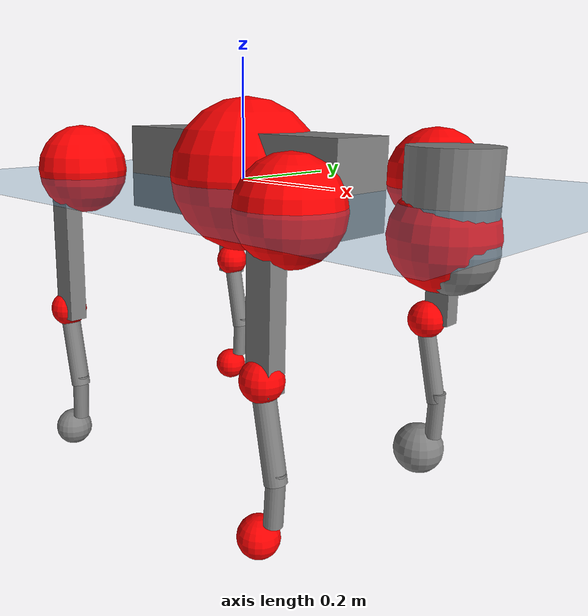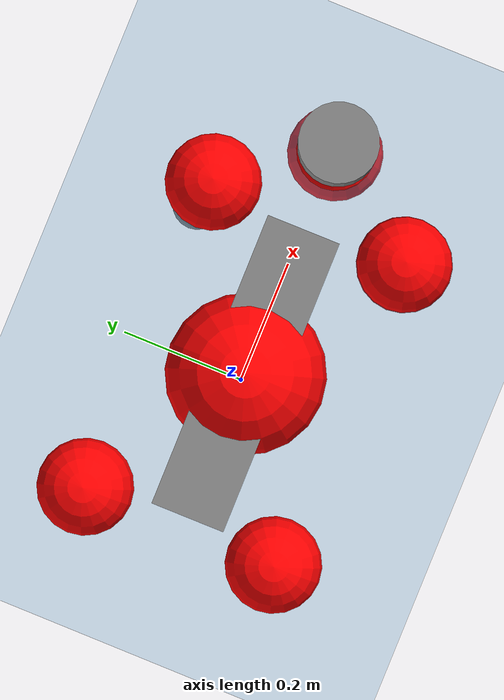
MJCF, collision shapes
<mujoco model="go2">
  <compiler angle="radian" assetdir="assets" balanceinertia="true" inertiafromgeom="false"/>

  <option timestep="0.005" density="1.2" viscosity="2e-05"/>

  <size nkey="1"/>

  <visual>
    <quality shadowsize="8192"/>
    <map shadowclip="0.5"/>
  </visual>

  <default>
    <default class="/">
      <geom contype="0" conaffinity="0" group="1" solref="-1000 -80"/>
      <site size="0.01 0.005 0.005" group="5"/>
      <general forcelimited="true" biastype="affine" gainprm="20" biasprm="0 -20 -0.5"/>
      <default class="go2">
        <joint armature="0.01" damping="0.01" frictionloss="0.2"/>
        <geom condim="1" margin="0.001"/>
        <default class="visual">
          <geom type="mesh" group="2"/>
        </default>
        <default class="collision">
          <geom group="3"/>
          <default class="foot">
            <geom size="0.022 0 0" condim="6" priority="1" friction="0.8 0.02 0.01" solimp="0.015 1 0.022"/>
          </default>
        </default>
        <default class="reward_collision_sphere">
          <geom group="5" rgba="1 0 0 1"/>
        </default>
      </default>
    </default>
  </default>

  <asset>
    <texture type="skybox" colorspace="auto" name="//unnamed_texture_0" builtin="gradient" rgb1="0.95 0.95 0.95" rgb2="0.95 0.95 0.95" width="100" height="600"/>
    <texture type="2d" colorspace="auto" name="texplane" builtin="checker" rgb1="0.345 0.575 0.748" rgb2="0.345 0.575 0.748" markrgb="1 1 1" width="512" height="512"/>
    <material name="MatPlane" class="/" texture="texplane" texuniform="true" texrepeat="2 2" specular="0.9"/>
    <material name="metal" class="/" rgba="0.9 0.95 0.95 1"/>
    <material name="black" class="/" rgba="0 0 0 1"/>
    <material name="white" class="/"/>
    <material name="gray" class="/" rgba="0.671705 0.692426 0.77427 1"/>
    <mesh name="base_0" class="/" file="base_0.obj"/>
    <mesh name="base_1" class="/" file="base_1.obj"/>
    <mesh name="base_2" class="/" file="base_2.obj"/>
    <mesh name="base_3" class="/" file="base_3.obj"/>
    <mesh name="base_4" class="/" file="base_4.obj"/>
    <mesh name="hip_0" class="/" file="hip_0.obj"/>
    <mesh name="hip_1" class="/" file="hip_1.obj"/>
    <mesh name="thigh_0" class="/" file="thigh_0.obj"/>
    <mesh name="thigh_1" class="/" file="thigh_1.obj"/>
    <mesh name="thigh_mirror_0" class="/" file="thigh_mirror_0.obj"/>
    <mesh name="thigh_mirror_1" class="/" file="thigh_mirror_1.obj"/>
    <mesh name="calf_0" class="/" file="calf_0.obj"/>
    <mesh name="calf_1" class="/" file="calf_1.obj"/>
    <mesh name="calf_mirror_0" class="/" file="calf_mirror_0.obj"/>
    <mesh name="calf_mirror_1" class="/" file="calf_mirror_1.obj"/>
    <mesh name="foot" class="/" file="foot.obj"/>
  </asset>

  <worldbody>
    <geom name="floor" class="/" size="100 100 0.125" type="plane" group="0" material="MatPlane"/>
    <light name="toplight_shadow" class="/" pos="0 0 5" dir="0.0990148 0.0990148 -0.990148" type="directional" ambient="0.04 0.04 0.04" diffuse="0.55 0.55 0.55" specular="0.12 0.12 0.12"/>
    <light name="toplight_fill" class="/" pos="0 0 5" dir="0.0990148 0.0990148 -0.990148" type="directional" castshadow="false" ambient="0.04 0.04 0.04" diffuse="0.3 0.3 0.3" specular="0.08 0.08 0.08"/>
    <body name="trunk" childclass="go2" pos="0.0113598 -0.00353903 0.0087588" quat="0.999987 -0.0032457 0.00366302 0.00166018">
      <inertial pos="0.0378991 -0.00925897 -0.00753121" quat="0.0319965 0.733973 -0.0466342 0.67682" mass="13.6996" diaginertia="0.384506 0.48031 0.0335059"/>
      <joint name="//unnamed_joint_0" type="free" armature="0" damping="0" frictionloss="0"/>
      <geom name="//unnamed_geom_1" class="visual" material="black" mesh="base_0"/>
      <geom name="//unnamed_geom_2" class="visual" material="black" mesh="base_1"/>
      <geom name="//unnamed_geom_3" class="visual" material="black" mesh="base_2"/>
      <geom name="//unnamed_geom_4" class="visual" material="white" mesh="base_3"/>
      <geom name="//unnamed_geom_5" class="visual" material="gray" mesh="base_4"/>
      <geom name="trunk_1" class="collision" size="0.243316 0.0604733 0.0737322" type="box"/>
      <geom name="trunk_2" class="collision" size="0.0646773 0.0582096" pos="0.390793 0 0.0113326" type="cylinder"/>
      <geom name="trunk_3" class="collision" size="0.0607967" pos="0.401762 0 -0.0679953"/>
      <geom name="//unnamed_geom_9" class="reward_collision_sphere" size="0.129355"/>
      <geom name="//unnamed_geom_10" class="reward_collision_sphere" size="0.0776128" pos="0.383937 0 -0.0509965"/>
      <site name="imu" pos="-0.0818979 0.0831055 0.0823323" size="0.0129355"/>
      <camera name="track" pos="0 -2.75237 0" quat="0.707107 0.707107 0 0" mode="trackcom"/>
      <camera name="ego_camera" pos="0.427815 0 0.0509965" quat="-0.5 -0.5 0.5 0.5"/>
      <body name="FL_hip" pos="0.263956 0.0656958 0.00730188" quat="0.999967 0.00599017 -0.00536487 0.0010099">
        <inertial pos="0.00152492 0.000841176 0.00542542" quat="0.465208 0.480322 0.508289 0.542693" mass="1.191" diaginertia="0.00350738 0.00240404 0.000649474"/>
        <joint name="FL_hip_joint" pos="0 0 0" axis="0.998911 0.0331943 0.0327757" stiffness="0.0249266" range="-1.33745 1.02533" armature="0.00470537" damping="0.000493674" frictionloss="0.306582"/>
        <geom name="//unnamed_geom_11" class="visual" material="metal" mesh="hip_0"/>
        <geom name="//unnamed_geom_12" class="visual" material="gray" mesh="hip_1"/>
        <geom name="//unnamed_geom_13" class="collision" size="0.0595032 0.0258709" pos="0 0.110095 0" quat="0.707107 0.707107 0 0" type="cylinder"/>
        <geom name="//unnamed_geom_14" class="reward_collision_sphere" size="0.0776128" pos="0 0.0963328 0"/>
        <body name="FL_thigh" pos="0.000647442 0.136144 0.0056942" quat="0.999999 0.00103561 0.000437778 0.000298624">
          <inertial pos="-0.00357504 -0.0160385 -0.0203842" quat="0.832816 0.0595837 -0.0345971 0.549245" mass="2.56468" diaginertia="0.0267988 0.0314796 0.00151949"/>
          <joint name="FL_thigh_joint" pos="0 0 0" axis="0.0208178 0.999783 -4.64898e-05" range="-1.5617 3.17056" armature="0.0191785" damping="0.0919384" frictionloss="0.253941"/>
          <geom name="//unnamed_geom_15" class="visual" material="metal" mesh="thigh_0"/>
          <geom name="//unnamed_geom_16" class="visual" material="gray" mesh="thigh_1"/>
          <geom name="//unnamed_geom_17" class="collision" size="0.137763 0.015846 0.0219903" pos="0 0 -0.120692" quat="0.707107 0 0.707107 0" type="box"/>
          <body name="FL_calf" pos="-0.0168686 -0.015439 -0.252446" quat="1 -0.000117805 -0.000139054 9.10953e-05">
            <inertial pos="0.0145959 0.00853404 -0.171154" quat="0.70898 0.00329625 -0.00428768 0.705208" mass="0.423217" diaginertia="0.00616726 0.00760053 9.91747e-05"/>
            <joint name="FL_calf_joint" pos="0 0 0" axis="-0.0123217 0.999908 -0.00566906" stiffness="0.0802031" range="-2.93818 -0.56261" armature="0.0142132" damping="0.002311" frictionloss="0.300176"/>
            <geom name="//unnamed_geom_18" class="visual" material="gray" mesh="calf_0"/>
            <geom name="//unnamed_geom_19" class="visual" material="black" mesh="calf_1"/>
            <geom name="FL_calf0" class="collision" size="0.0155226 0.0776128" pos="0.0109696 0 -0.0679953" quat="0.994493 0 -0.104807 0" type="cylinder"/>
            <geom name="//unnamed_geom_21" class="collision" size="0.014229 0.0420403" pos="0.0274241 0 -0.167722" quat="0.999688 0 0.0249974 0" type="cylinder"/>
            <geom name="//unnamed_geom_22" class="visual" pos="0 0 -0.241383" quat="1 0 0 0" material="black" mesh="foot"/>
            <geom name="FL_foot" class="foot" size="0.0447007" pos="-0.00274241 0 -0.241383"/>
            <geom name="//unnamed_geom_24" class="reward_collision_sphere" size="0.0323387"/>
            <geom name="//unnamed_geom_25" class="reward_collision_sphere" size="0.0323387" pos="-0.00274241 0 -0.241383"/>
            <site name="FL_foot" class="foot" pos="-0.00274241 0 -0.241383" size="0.0129355"/>
          </body>
        </body>
      </body>
      <body name="FR_hip" pos="0.256703 -0.0728627 -0.0150459" quat="1 -0.000104793 0.000462535 -0.000192879">
        <inertial pos="-0.00186857 0.00824484 -0.00114174" quat="0.472317 0.511156 0.45877 0.552419" mass="1.181" diaginertia="0.00386047 0.00215688 0.000688242"/>
        <joint name="FR_hip_joint" pos="0 0 0" axis="0.999971 -0.00370871 -0.00670138" range="-1.28052 1.00497" armature="0.0136456" damping="0.00383682" frictionloss="0.173822"/>
        <geom name="//unnamed_geom_26" class="visual" pos="0 2.11629e-09 9.07719e-08" quat="4.63268e-05 1 0 0" material="metal" mesh="hip_0"/>
        <geom name="//unnamed_geom_27" class="visual" pos="0 3.43075e-09 -2.24514e-07" quat="4.63268e-05 1 0 0" material="gray" mesh="hip_1"/>
        <geom name="//unnamed_geom_28" class="collision" size="0.0595032 0.0258709" pos="0 -0.110095 0" quat="0.707107 0.707107 0 0" type="cylinder"/>
        <geom name="//unnamed_geom_29" class="reward_collision_sphere" size="0.0776128" pos="0 -0.0963328 0"/>
        <body name="FR_thigh" pos="-0.00834451 -0.130118 0.0124651" quat="0.999995 0.00258266 0.000199629 0.00171063">
          <inertial pos="-0.00525643 0.0317749 -0.0217076" quat="0.505647 0.0123302 0.144173 0.85052" mass="1.86828" diaginertia="0.0260487 0.0234898 0.00133839"/>
          <joint name="FR_thigh_joint" pos="0 0 0" axis="-0.00236262 -0.999994 0.00245783" stiffness="0.0243858" range="-3.1899 1.32132" armature="0.0204028" damping="0.0180076" frictionloss="0.195702"/>
          <geom name="//unnamed_geom_30" class="visual" material="metal" mesh="thigh_mirror_0"/>
          <geom name="//unnamed_geom_31" class="visual" material="gray" mesh="thigh_mirror_1"/>
          <geom name="//unnamed_geom_32" class="collision" size="0.137763 0.015846 0.0219903" pos="0 0 -0.120692" quat="0.707107 0 0.707107 0" type="box"/>
          <body name="FR_calf" pos="-0.00310272 -0.00234605 -0.241865" quat="1 -0.000156451 -0.000301523 0.000439821">
            <inertial pos="0.00429586 -0.000136747 -0.177232" quat="0.713456 -0.0204561 -0.0389042 0.69932" mass="0.729755" diaginertia="0.00792745 0.00695904 0.000141974"/>
            <joint name="FR_calf_joint" pos="0 0 0" axis="0.0268523 -0.999538 -0.014225" stiffness="0.0280594" range="0.823981 2.90372" armature="0.0054799" damping="0.0119627" frictionloss="0.251818"/>
            <geom name="//unnamed_geom_33" class="visual" material="gray" mesh="calf_mirror_0"/>
            <geom name="//unnamed_geom_34" class="visual" material="black" mesh="calf_mirror_1"/>
            <geom name="FR_calf0" class="collision" size="0.0168161 0.0776128" pos="0.013712 0 -0.0679953" quat="0.995004 0 -0.0998334 0" type="cylinder"/>
            <geom name="//unnamed_geom_36" class="collision" size="0.014229 0.0420403" pos="0.0274241 0 -0.167722" quat="0.999688 0 0.0249974 0" type="cylinder"/>
            <geom name="//unnamed_geom_37" class="visual" pos="0 0 -0.241383" quat="1 0 0 0" material="black" mesh="foot"/>
            <geom name="FR_foot" class="foot" size="0.0213786" pos="-0.00274241 0 -0.241383"/>
            <geom name="//unnamed_geom_39" class="reward_collision_sphere" size="0.0323387"/>
            <geom name="//unnamed_geom_40" class="reward_collision_sphere" size="0.0323387" pos="-0.00274241 0 -0.241383"/>
            <site name="FR_foot" class="foot" pos="-0.00274241 0 -0.241383" size="0.0129355"/>
          </body>
        </body>
      </body>
      <body name="RL_hip" pos="-0.260957 0.072414 0.0146647" quat="0.999999 0.000931147 -0.000329818 0.000361748">
        <inertial pos="0.0070953 0.00497068 0.0142952" quat="0.492753 0.497102 0.50027 0.50972" mass="1.24968" diaginertia="0.00369728 0.00346995 0.000905073"/>
        <joint name="RL_hip_joint" pos="0 0 0" axis="-0.999942 -0.00796767 0.00721136" range="-1.37203 0.761366" armature="0.0121619" damping="0.0579702" frictionloss="0.0741085"/>
        <geom name="//unnamed_geom_41" class="visual" pos="-2.0729e-09 0 -4.06337e-07" quat="4.63268e-05 0 1 0" material="metal" mesh="hip_0"/>
        <geom name="//unnamed_geom_42" class="visual" pos="-3.36042e-09 0 -3.60363e-07" quat="4.63268e-05 0 1 0" material="gray" mesh="hip_1"/>
        <geom name="//unnamed_geom_43" class="collision" size="0.0595032 0.0258709" pos="0 0.110095 0" quat="0.707107 0.707107 0 0" type="cylinder"/>
        <geom name="//unnamed_geom_44" class="reward_collision_sphere" size="0.0776128" pos="0 0.0963328 0"/>
        <body name="RL_thigh" pos="-0.0020316 0.136704 -0.00399877" quat="1 -7.61976e-07 2.07657e-06 1.39044e-06">
          <inertial pos="0.00882834 -0.0346136 -0.0204987" quat="0.805162 0.140076 0.00698947 0.576232" mass="2.37374" diaginertia="0.0309958 0.025725 0.00175448"/>
          <joint name="RL_thigh_joint" pos="0 0 0" axis="0.0633225 0.997585 -0.0285548" stiffness="0.0323228" range="-0.239473 4.62593" armature="0.00828157" damping="0" frictionloss="0.266676"/>
          <geom name="//unnamed_geom_45" class="visual" material="metal" mesh="thigh_0"/>
          <geom name="//unnamed_geom_46" class="visual" material="gray" mesh="thigh_1"/>
          <geom name="//unnamed_geom_47" class="collision" size="0.137763 0.015846 0.0219903" pos="0 0 -0.120692" quat="0.707107 0 0.707107 0" type="box"/>
          <body name="RL_calf" pos="0.0101029 -0.00779004 -0.229512" quat="1 0.000243009 0.000810228 -9.32237e-05">
            <inertial pos="-0.000872458 0.00908662 -0.170986" quat="0.710614 0.0638843 0.00395443 0.700664" mass="0.601149" diaginertia="0.00719719 0.00657283 0.000107901"/>
            <joint name="RL_calf_joint" pos="0 0 0" axis="0.0416139 0.998997 -0.0165218" stiffness="0.083489" range="-2.85409 -0.829695" armature="0.0100082" damping="0" frictionloss="0.133022"/>
            <geom name="//unnamed_geom_48" class="visual" material="gray" mesh="calf_0"/>
            <geom name="//unnamed_geom_49" class="visual" material="black" mesh="calf_1"/>
            <geom name="RL_calf0" class="collision" size="0.0168161 0.0776128" pos="0.013712 0 -0.0679953" quat="0.995004 0 -0.0998334 0" type="cylinder"/>
            <geom name="//unnamed_geom_51" class="collision" size="0.014229 0.0420403" pos="0.0274241 0 -0.167722" quat="0.999688 0 0.0249974 0" type="cylinder"/>
            <geom name="//unnamed_geom_52" class="visual" pos="0 0 -0.241383" quat="1 0 0 0" material="black" mesh="foot"/>
            <geom name="RL_foot" class="foot" size="0.0208378" pos="-0.00274241 0 -0.241383"/>
            <geom name="//unnamed_geom_54" class="reward_collision_sphere" size="0.0323387"/>
            <geom name="//unnamed_geom_55" class="reward_collision_sphere" size="0.0323387" pos="-0.00274241 0 -0.241383"/>
            <site name="RL_foot" class="foot" pos="-0.00274241 0 -0.241383" size="0.0129355"/>
          </body>
        </body>
      </body>
      <body name="RR_hip" pos="-0.265047 -0.0579757 -0.00128883" quat="0.999994 0.000163693 0.00325072 0.00141683">
        <inertial pos="0.00651555 -0.0167373 0.0112171" quat="0.500959 0.49748 0.496319 0.505194" mass="1.5862" diaginertia="0.00539816 0.00372317 0.00108817"/>
        <joint name="RR_hip_joint" pos="0 0 0" axis="-0.999496 -0.0315942 -0.0032166" stiffness="0.00420837" range="-1.18834 1.30128" armature="0.0185019" damping="0.0733075" frictionloss="0.169962"/>
        <geom name="//unnamed_geom_56" class="visual" pos="2.07308e-09 2.11629e-09 -4.97109e-07" quat="2.14617e-09 4.63268e-05 4.63268e-05 -1" material="metal" mesh="hip_0"/>
        <geom name="//unnamed_geom_57" class="visual" pos="3.36e-09 3.43075e-09 -1.35849e-07" quat="2.14617e-09 4.63268e-05 4.63268e-05 -1" material="gray" mesh="hip_1"/>
        <geom name="//unnamed_geom_58" class="collision" size="0.0595032 0.0258709" pos="0 -0.110095 0" quat="0.707107 0.707107 0 0" type="cylinder"/>
        <geom name="//unnamed_geom_59" class="reward_collision_sphere" size="0.0776128" pos="0 -0.0963328 0"/>
        <body name="RR_thigh" pos="-0.0043563 -0.129261 -0.0149934" quat="1 -3.60922e-06 -0.00028148 -4.74872e-05">
          <inertial pos="0.00503534 0.0192697 -0.0368822" quat="0.553585 -0.0193702 0.0876396 0.827942" mass="3.3603" diaginertia="0.0300893 0.0346097 0.00160429"/>
          <joint name="RR_thigh_joint" pos="0 0 0" axis="0.00835685 -0.999384 0.0340963" range="-4.23789 0.240249" armature="0.0116595" damping="0.00187749" frictionloss="0.426945"/>
          <geom name="//unnamed_geom_60" class="visual" material="metal" mesh="thigh_mirror_0"/>
          <geom name="//unnamed_geom_61" class="visual" material="gray" mesh="thigh_mirror_1"/>
          <geom name="//unnamed_geom_62" class="collision" size="0.137763 0.015846 0.0219903" pos="0 0 -0.120692" quat="0.707107 0 0.707107 0" type="box"/>
          <body name="RR_calf" pos="-0.0152816 0.00268207 -0.244408" quat="0.999998 0.000136073 -0.00193716 -0.000329632">
            <inertial pos="0.00194063 0.000656905 -0.160948" quat="0.714839 0.00419712 -0.00162698 0.699275" mass="0.680935" diaginertia="0.00867919 0.00844947 0.000109905"/>
            <joint name="RR_calf_joint" pos="0 0 0" axis="0.0271646 -0.998915 0.0378386" stiffness="0.0595013" range="0.894471 2.5297" armature="0.0178751" damping="0.0808339" frictionloss="0.266606"/>
            <geom name="//unnamed_geom_63" class="visual" material="gray" mesh="calf_mirror_0"/>
            <geom name="//unnamed_geom_64" class="visual" material="black" mesh="calf_mirror_1"/>
            <geom name="RR_calf0" class="collision" size="0.0168161 0.0776128" pos="0.013712 0 -0.0679953" quat="0.995004 0 -0.0998334 0" type="cylinder"/>
            <geom name="//unnamed_geom_66" class="collision" size="0.014229 0.0420403" pos="0.0274241 0 -0.167722" quat="0.999688 0 0.0249974 0" type="cylinder"/>
            <geom name="//unnamed_geom_67" class="visual" pos="0 0 -0.241383" quat="1 0 0 0" material="black" mesh="foot"/>
            <geom name="RR_foot" class="foot" size="0.0333757" pos="-0.00274241 0 -0.241383"/>
            <geom name="//unnamed_geom_69" class="reward_collision_sphere" size="0.0323387"/>
            <geom name="//unnamed_geom_70" class="reward_collision_sphere" size="0.0323387" pos="-0.00274241 0 -0.241383"/>
            <site name="RR_foot" class="foot" pos="-0.00274241 0 -0.241383" size="0.0129355"/>
          </body>
        </body>
      </body>
    </body>
  </worldbody>

  <contact>
    <pair class="/" geom1="floor" geom2="FL_foot" name="//unnamed_contact_0"/>
    <pair class="/" geom1="floor" geom2="FR_foot" name="//unnamed_contact_1"/>
    <pair class="/" geom1="floor" geom2="RL_foot" name="//unnamed_contact_2"/>
    <pair class="/" geom1="floor" geom2="RR_foot" name="//unnamed_contact_3"/>
  </contact>

  <actuator>
    <general name="FL_hip" class="/" joint="FL_hip_joint" forcerange="-25.9757 25.9757" gainprm="30.083" biasprm="0 -30.083 -0.422"/>
    <general name="FL_thigh" class="/" joint="FL_thigh_joint" forcerange="-15.3642 15.3642" gainprm="30.083" biasprm="0 -30.083 -0.422"/>
    <general name="FL_calf" class="/" joint="FL_calf_joint" forcerange="-90.5448 90.5448" gainprm="30.083" biasprm="0 -30.083 -0.422"/>
    <general name="FR_hip" class="/" joint="FR_hip_joint" forcerange="-27.855 27.855" gainprm="30.083" biasprm="0 -30.083 -0.422"/>
    <general name="FR_thigh" class="/" joint="FR_thigh_joint" forcerange="-19.1884 19.1884" gainprm="30.083" biasprm="0 -30.083 -0.422"/>
    <general name="FR_calf" class="/" joint="FR_calf_joint" forcerange="-21.273 21.273" gainprm="30.083" biasprm="0 -30.083 -0.422"/>
    <general name="RL_hip" class="/" joint="RL_hip_joint" forcerange="-13.8785 13.8785" gainprm="30.083" biasprm="0 -30.083 -0.422"/>
    <general name="RL_thigh" class="/" joint="RL_thigh_joint" forcerange="-20.9648 20.9648" gainprm="30.083" biasprm="0 -30.083 -0.422"/>
    <general name="RL_calf" class="/" joint="RL_calf_joint" forcerange="-57.8843 57.8843" gainprm="30.083" biasprm="0 -30.083 -0.422"/>
    <general name="RR_hip" class="/" joint="RR_hip_joint" forcerange="-31.9556 31.9556" gainprm="30.083" biasprm="0 -30.083 -0.422"/>
    <general name="RR_thigh" class="/" joint="RR_thigh_joint" forcerange="-49.3381 49.3381" gainprm="30.083" biasprm="0 -30.083 -0.422"/>
    <general name="RR_calf" class="/" joint="RR_calf_joint" forcerange="-86.5965 86.5965" gainprm="30.083" biasprm="0 -30.083 -0.422"/>
  </actuator>

  <sensor>
    <gyro site="imu" name="imu_angular_velocity"/>
    <velocimeter site="imu" name="imu_linear_velocity"/>
    <framelinvel objtype="site" objname="FL_foot" name="FL_foot_global_linear_velocity"/>
    <framelinvel objtype="site" objname="FR_foot" name="FR_foot_global_linear_velocity"/>
    <framelinvel objtype="site" objname="RL_foot" name="RL_foot_global_linear_velocity"/>
    <framelinvel objtype="site" objname="RR_foot" name="RR_foot_global_linear_velocity"/>
  </sensor>

  <keyframe>
    <key name="home" qpos="0 0 0.325 1 0 0 0 0.1 0.8 -1.5 -0.1 -0.8 1.5 -0.1 0.8 -1.5 0.1 -0.8 1.5"/>
  </keyframe>
</mujoco>
